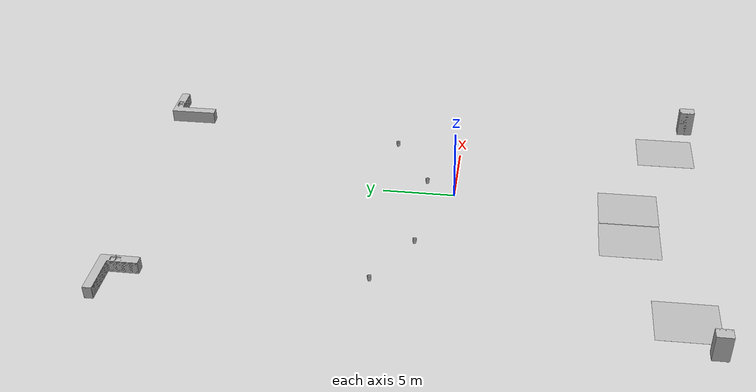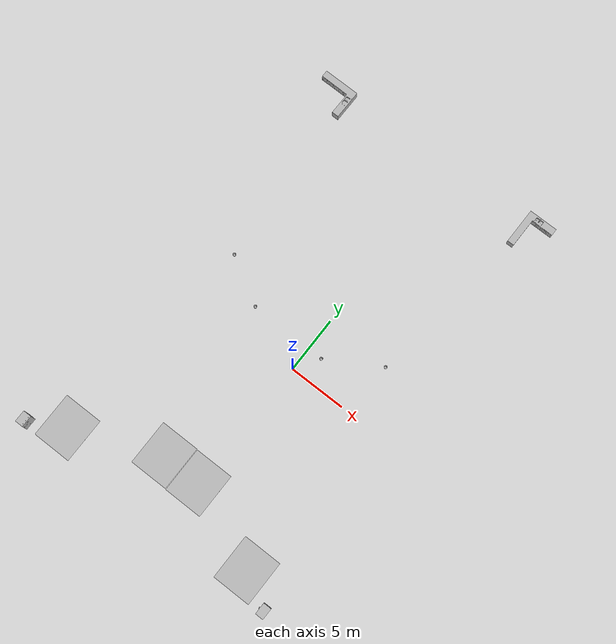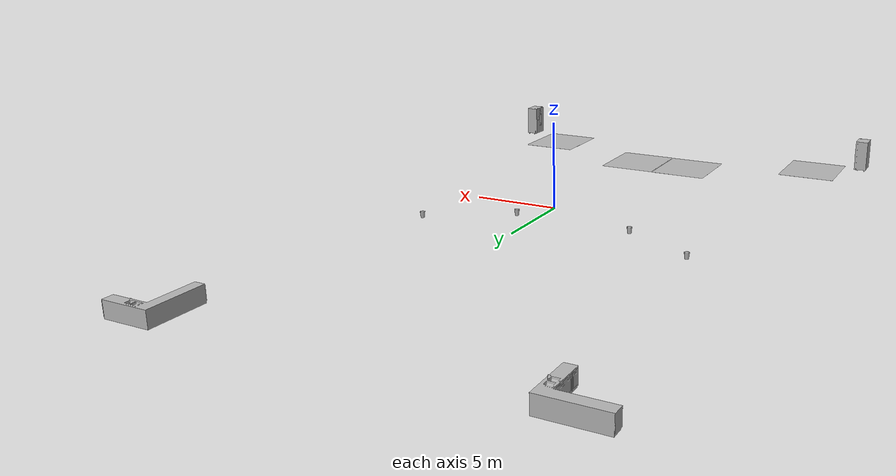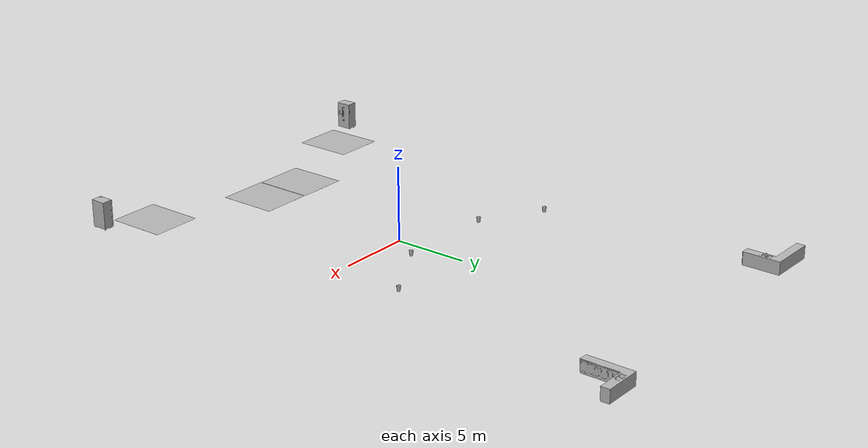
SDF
<sdf version="1.7">
 <world name="default">
  <light name="sun" type="directional">
   <pose>0 0 10 0 -0 0</pose>
   <diffuse>0.8 0.8 0.8 1</diffuse>
   <specular>0.2 0.2 0.2 1</specular>
   <attenuation>
    <range>1000</range>
    <constant>0.9</constant>
    <linear>0.01</linear>
    <quadratic>0.001</quadratic>
   </attenuation>
   <direction>-0.5 0.1 -0.9</direction>
   <spot><inner_angle>0</inner_angle><outer_angle>0</outer_angle><falloff>0</falloff></spot>
  </light>
  <gravity>0 0 -9.8</gravity>
  <magnetic_field>6e-06 2.3e-05 -4.2e-05</magnetic_field>
  <atmosphere type="adiabatic"/>
  <physics type="ode">
   <max_step_size>0.001</max_step_size>
   <real_time_factor>1</real_time_factor>
   <real_time_update_rate>1000</real_time_update_rate>
  </physics>
  <scene><ambient>0.4 0.4 0.4 1</ambient><background>0.7 0.7 0.7 1</background><shadows>1</shadows></scene>
  <audio><device>default</device></audio>
  <spherical_coordinates>
   <surface_model>EARTH_WGS84</surface_model>
   <latitude_deg>0</latitude_deg>
   <longitude_deg>0</longitude_deg>
   <elevation>0</elevation>
   <heading_deg>0</heading_deg>
  </spherical_coordinates>
  <model name="aws_robomaker_residential_KitchenCabinet_01">
   <link name="link">
    <inertial><mass>1</mass></inertial>
    <collision name="collision">
     <geometry>
      <mesh>
       <uri>model://aws_robomaker_residential_KitchenCabinet_01/meshes/aws_KitchenCabinet_01_collision.DAE</uri>
       <scale>1 1 1</scale>
      </mesh>
     </geometry>
    </collision>
    <visual name="visual">
     <geometry>
      <mesh>
       <uri>model://aws_robomaker_residential_KitchenCabinet_01/meshes/aws_KitchenCabinet_01_visual.DAE</uri>
      </mesh>
     </geometry>
     <meta><layer>1</layer></meta>
    </visual>
   </link>
   <static>1</static>
   <pose>8.66462 20.6689 0 0 -0 0</pose>
  </model>
  <model name="aws_robomaker_residential_KitchenCabinet_01_clone">
   <link name="link">
    <inertial><mass>1</mass></inertial>
    <collision name="collision">
     <geometry>
      <mesh>
       <uri>model://aws_robomaker_residential_KitchenCabinet_01/meshes/aws_KitchenCabinet_01_collision.DAE</uri>
       <scale>1 1 1</scale>
      </mesh>
     </geometry>
    </collision>
    <visual name="visual">
     <geometry>
      <mesh>
       <uri>model://aws_robomaker_residential_KitchenCabinet_01/meshes/aws_KitchenCabinet_01_visual.DAE</uri>
      </mesh>
     </geometry>
     <meta><layer>1</layer></meta>
    </visual>
   </link>
   <static>1</static>
   <pose>-11.6652 20.2684 0 0 0 -1.5763</pose>
  </model>
  <model name="aws_robomaker_residential_Carpet_01_0">
   <link name="link">
    <inertial><mass>8.1</mass></inertial>
    <collision name="collision">
     <geometry>
      <mesh>
       <uri>model://aws_robomaker_residential_Carpet_01/meshes/aws_Carpet_01_collision.DAE</uri>
       <scale>1 1 0.95</scale>
      </mesh>
     </geometry>
     <pose>0 0 -0.01 0 -0 0</pose>
    </collision>
    <visual name="visual">
     <geometry>
      <mesh><uri>model://aws_robomaker_residential_Carpet_01/meshes/aws_Carpet_01_visual.DAE</uri></mesh>
     </geometry>
     <meta><layer>1</layer></meta>
    </visual>
   </link>
   <static>1</static>
   <pose>-3.75673 -11.8159 0 0 -0 0</pose>
  </model>
  <model name="aws_robomaker_residential_Refrigerator_01">
   <link name="link">
    <inertial><mass>1</mass></inertial>
    <collision name="collision">
     <geometry>
      <mesh>
       <uri>model://aws_robomaker_residential_Refrigerator_01/meshes/aws_Refrigerator_01_collision.DAE</uri>
       <scale>1 1 1</scale>
      </mesh>
     </geometry>
    </collision>
    <visual name="visual">
     <geometry>
      <mesh>
       <uri>model://aws_robomaker_residential_Refrigerator_01/meshes/aws_Refrigerator_01_visual.DAE</uri>
      </mesh>
     </geometry>
     <meta><layer>1</layer></meta>
    </visual>
   </link>
   <static>1</static>
   <pose>-14.0256 -16.4637 0 0 -0 1.5675</pose>
  </model>
  <model name="aws_robomaker_residential_Trash_01_0">
   <link name="link">
    <inertial>
     <mass>0.1</mass>
     <inertia><ixy>0</ixy><ixz>0</ixz><iyz>0</iyz><ixx>0.05288</ixx><iyy>0.05288</iyy><izz>0.09132</izz></inertia>
    </inertial>
    <collision name="collision">
     <geometry>
      <mesh>
       <uri>model://aws_robomaker_residential_Trash_01/meshes/aws_Trash_01_collision.DAE</uri>
       <scale>1 1 1</scale>
      </mesh>
     </geometry>
    </collision>
    <visual name="visual">
     <geometry>
      <mesh><uri>model://aws_robomaker_residential_Trash_01/meshes/aws_Trash_01_visual.DAE</uri></mesh>
     </geometry>
     <meta><layer>1</layer></meta>
    </visual>
   </link>
   <pose>1.32888 2.03587 0.000903 0 -0 0</pose>
  </model>
  <model name="aws_robomaker_residential_Trash_01_1">
   <link name="link">
    <inertial>
     <mass>0.1</mass>
     <inertia><ixy>0</ixy><ixz>0</ixz><iyz>0</iyz><ixx>0.05288</ixx><iyy>0.05288</iyy><izz>0.09132</izz></inertia>
    </inertial>
    <collision name="collision">
     <geometry>
      <mesh>
       <uri>model://aws_robomaker_residential_Trash_01/meshes/aws_Trash_01_collision.DAE</uri>
       <scale>1 1 1</scale>
      </mesh>
     </geometry>
    </collision>
    <visual name="visual">
     <geometry>
      <mesh><uri>model://aws_robomaker_residential_Trash_01/meshes/aws_Trash_01_visual.DAE</uri></mesh>
     </geometry>
     <meta><layer>1</layer></meta>
    </visual>
   </link>
   <pose>-5.53457 2.13558 0.000903 -1e-06 -1e-06 0</pose>
  </model>
  <model name="aws_robomaker_residential_Trash_01_2">
   <link name="link">
    <inertial>
     <mass>0.1</mass>
     <inertia><ixy>0</ixy><ixz>0</ixz><iyz>0</iyz><ixx>0.05288</ixx><iyy>0.05288</iyy><izz>0.09132</izz></inertia>
    </inertial>
    <collision name="collision">
     <geometry>
      <mesh>
       <uri>model://aws_robomaker_residential_Trash_01/meshes/aws_Trash_01_collision.DAE</uri>
       <scale>1 1 1</scale>
      </mesh>
     </geometry>
    </collision>
    <visual name="visual">
     <geometry>
      <mesh><uri>model://aws_robomaker_residential_Trash_01/meshes/aws_Trash_01_visual.DAE</uri></mesh>
     </geometry>
     <meta><layer>1</layer></meta>
    </visual>
   </link>
   <pose>5.8357 4.69649 0.000894 1e-06 -0 0</pose>
  </model>
  <model name="aws_robomaker_residential_Trash_01_3">
   <link name="link">
    <inertial>
     <mass>0.1</mass>
     <inertia><ixy>0</ixy><ixz>0</ixz><iyz>0</iyz><ixx>0.05288</ixx><iyy>0.05288</iyy><izz>0.09132</izz></inertia>
    </inertial>
    <collision name="collision">
     <geometry>
      <mesh>
       <uri>model://aws_robomaker_residential_Trash_01/meshes/aws_Trash_01_collision.DAE</uri>
       <scale>1 1 1</scale>
      </mesh>
     </geometry>
    </collision>
    <visual name="visual">
     <geometry>
      <mesh><uri>model://aws_robomaker_residential_Trash_01/meshes/aws_Trash_01_visual.DAE</uri></mesh>
     </geometry>
     <meta><layer>1</layer></meta>
    </visual>
   </link>
   <pose>-9.59563 4.50325 0.000894 2e-06 1e-06 0</pose>
  </model>
  <model name="aws_robomaker_residential_Carpet_01_1">
   <link name="link">
    <inertial><mass>8.1</mass></inertial>
    <collision name="collision">
     <geometry>
      <mesh>
       <uri>model://aws_robomaker_residential_Carpet_01/meshes/aws_Carpet_01_collision.DAE</uri>
       <scale>1 1 0.95</scale>
      </mesh>
     </geometry>
     <pose>0 0 -0.01 0 -0 0</pose>
    </collision>
    <visual name="visual">
     <geometry>
      <mesh><uri>model://aws_robomaker_residential_Carpet_01/meshes/aws_Carpet_01_visual.DAE</uri></mesh>
     </geometry>
     <meta><layer>1</layer></meta>
    </visual>
   </link>
   <static>1</static>
   <pose>7.04014 -14.8197 0 0 -0 0</pose>
  </model>
  <model name="aws_robomaker_residential_Carpet_01_2">
   <link name="link">
    <inertial><mass>8.1</mass></inertial>
    <collision name="collision">
     <geometry>
      <mesh>
       <uri>model://aws_robomaker_residential_Carpet_01/meshes/aws_Carpet_01_collision.DAE</uri>
       <scale>1 1 0.95</scale>
      </mesh>
     </geometry>
     <pose>0 0 -0.01 0 -0 0</pose>
    </collision>
    <visual name="visual">
     <geometry>
      <mesh><uri>model://aws_robomaker_residential_Carpet_01/meshes/aws_Carpet_01_visual.DAE</uri></mesh>
     </geometry>
     <meta><layer>1</layer></meta>
    </visual>
   </link>
   <static>1</static>
   <pose>-11.2634 -14.8831 0 0 -0 0</pose>
  </model>
  <model name="aws_robomaker_residential_Carpet_01_0_clone">
   <link name="link">
    <inertial><mass>8.1</mass></inertial>
    <collision name="collision">
     <geometry>
      <mesh>
       <uri>model://aws_robomaker_residential_Carpet_01/meshes/aws_Carpet_01_collision.DAE</uri>
       <scale>1 1 0.95</scale>
      </mesh>
     </geometry>
     <pose>0 0 -0.01 0 -0 0</pose>
    </collision>
    <visual name="visual">
     <geometry>
      <mesh><uri>model://aws_robomaker_residential_Carpet_01/meshes/aws_Carpet_01_visual.DAE</uri></mesh>
     </geometry>
     <meta><layer>1</layer></meta>
    </visual>
   </link>
   <static>1</static>
   <pose>-0.237467 -11.8521 0 0 -0 0</pose>
  </model>
  <model name="aws_robomaker_residential_Refrigerator_01_clone">
   <link name="link">
    <inertial><mass>1</mass></inertial>
    <collision name="collision">
     <geometry>
      <mesh>
       <uri>model://aws_robomaker_residential_Refrigerator_01/meshes/aws_Refrigerator_01_collision.DAE</uri>
       <scale>1 1 1</scale>
      </mesh>
     </geometry>
    </collision>
    <visual name="visual">
     <geometry>
      <mesh>
       <uri>model://aws_robomaker_residential_Refrigerator_01/meshes/aws_Refrigerator_01_visual.DAE</uri>
      </mesh>
     </geometry>
     <meta><layer>1</layer></meta>
    </visual>
   </link>
   <static>1</static>
   <pose>9.95886 -16.4343 0 0 0 -1.57979</pose>
  </model>
 </world>
</sdf>
